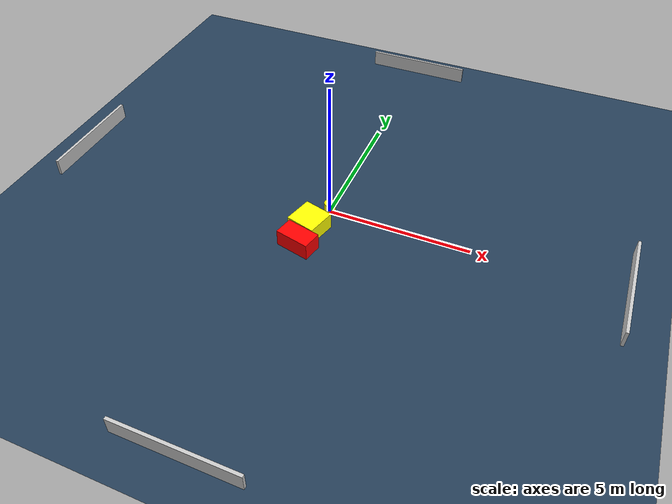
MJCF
<?xml version="1.0" ?>
<mujoco model="generated_environment">
  <option timestep="0.01" integrator="RK4" cone="elliptic"/>
  <default>
    <geom density="1"/>
  </default>
  <asset>
    <texture builtin="gradient" height="3072" name="skybox" rgb1="0.3 0.5 0.7" rgb2="0 0 0" type="skybox" width="512"/>
    <texture builtin="checker" height="300" name="groundplane" rgb1="0.2 0.3 0.4" rgb2="0.1 0.2 0.3" type="2d" width="300"/>
    <material name="groundplane" reflectance="0.2" texrepeat="5 5" texture="groundplane"/>
  </asset>
  <worldbody>
    <light dir="0 0 -1" directional="true" pos="0 0 1.5"/>
    <geom condim="3" friction="0.5 0.005 0.001" material="groundplane" name="floor" pos="0 0 0" size="0 0 0.05" type="plane"/>
    <body name="walls">
      <geom name="wall_1" condim="4" pos="-10.0 0.0 0.3" rgba="0.800000011920929 0.800000011920929 0.800000011920929 1.0" size="0.05 2.0 0.3" type="box"/>
      <geom name="wall_2" condim="4" pos="10.0 0.0 0.3" rgba="0.800000011920929 0.800000011920929 0.800000011920929 1.0" size="0.05 2.0 0.3" type="box"/>
      <geom name="wall_3" condim="4" pos="0.0 -10.0 0.3" rgba="0.800000011920929 0.800000011920929 0.800000011920929 1.0" size="2.0 0.05 0.3" type="box"/>
      <geom name="wall_4" condim="4" pos="0.0 10.0 0.3" rgba="0.800000011920929 0.800000011920929 0.800000011920929 1.0" size="2.0 0.05 0.3" type="box"/>
    </body>
    <body name="robot">
      <joint name="joint_x" type="slide" pos="0 0 0" axis="1 0 0"/>
      <joint name="joint_y" type="slide" pos="0 0 0" axis="0 1 0"/>
      <geom name="robot" type="cylinder" pos="0.0 0.0 0.2" size="0.2 0.2 0.0" mass="5.0" friction="1.0 0.005 0.0001" condim="4" rgba="1.0 1.0 0.0 1.0"/>
    </body>
    <body name="obstacle_1_movable">
      <geom name="obstacle_1_movable" condim="4" pos="-0.2948657547391871 -1.0646048874907148 0.3" euler="0 0 344.7323941995536" friction="0.0 0.005 0.001" rgba="1.0 1.0 0.0 1.0" size="0.5245049532570469 0.5186479373457478 0.3" type="box" mass="0.1"/>
      <joint type="free"/>
    </body>
    <body name="obstacle_2_static">
      <geom name="obstacle_2_static" condim="4" pos="-0.3192666757389813 -1.969637310485607 0.3" euler="0 0 76.6166521861393" friction="0.0 0.005 0.001" rgba="1.0 0.0 0.0 1.0" size="0.33339681941322796 0.6045623487564733 0.3" type="box"/>
    </body>
  </worldbody>
  <actuator>
    <motor name="actuator_x" joint="joint_x" gear="1" ctrlrange="-1 1"/>
    <motor name="actuator_y" joint="joint_y" gear="1" ctrlrange="-1 1"/>
  </actuator>
</mujoco>
